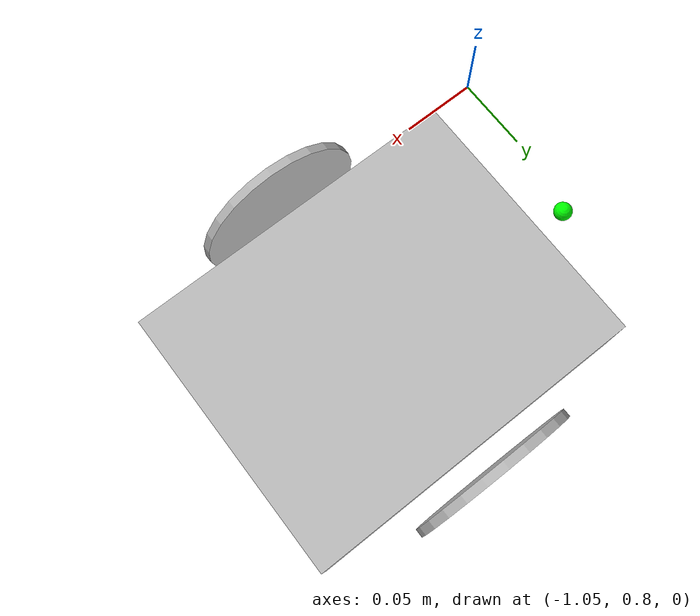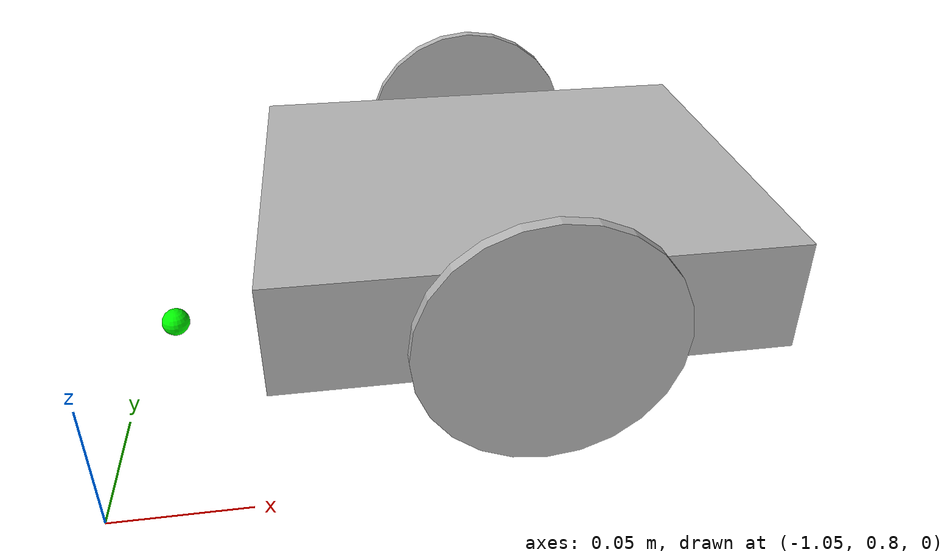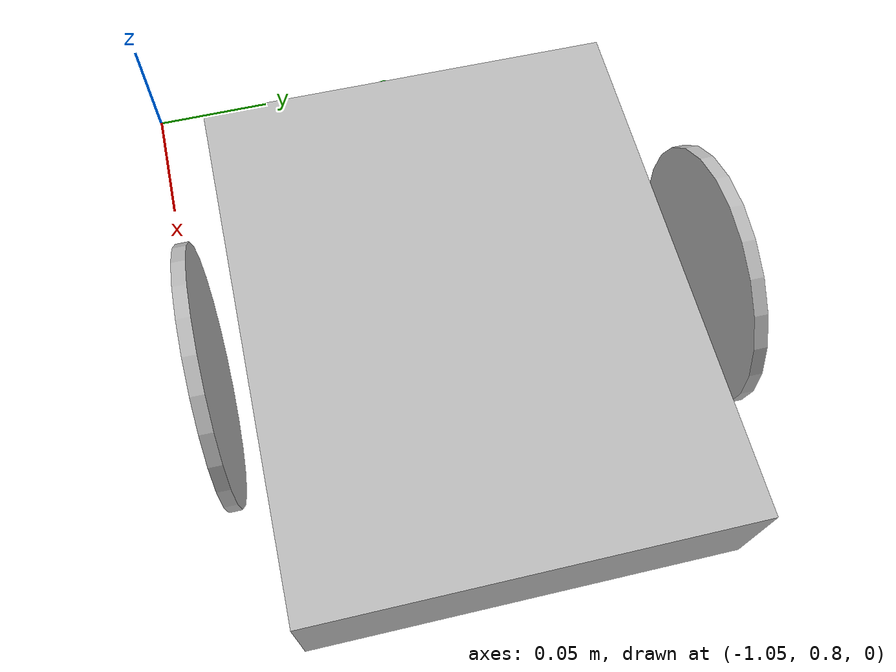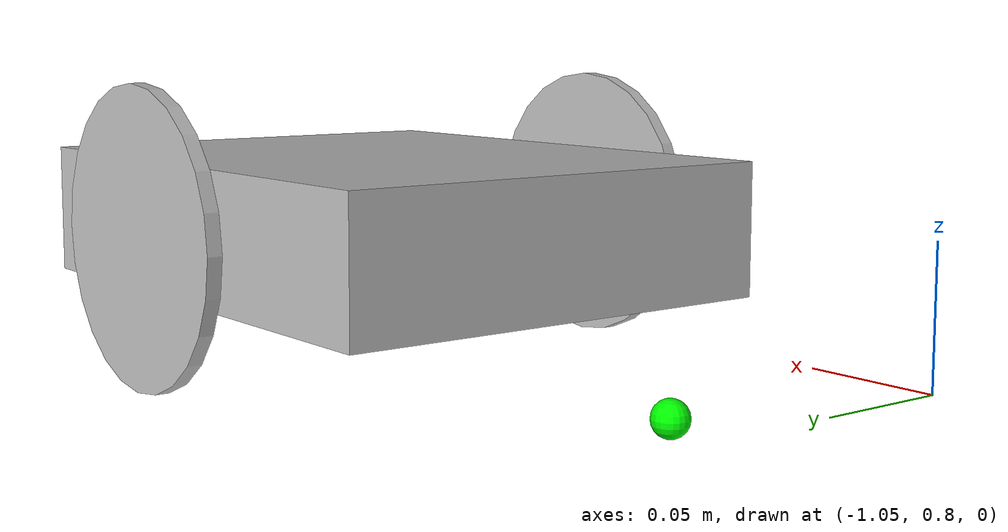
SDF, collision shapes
<?xml version='1.0'?>
<sdf version='1.4'>
  <model name='puzzlebot1' canonical_link='chassis'>
      <pose>-0.894 0.906 0 0 0 0</pose>
      <link name='chassis'>
        <pose>0 0 0.050000000000000003 0 0 0</pose>
        <inertial>
          <mass>0.80000000000000004</mass>
          <pose>0 0 0 0 0 0</pose>
          <inertia>
            <ixx>0.070000000000000007</ixx>
            <iyy>0.080000000000000002</iyy>
            <izz>0.10000000000000001</izz>
            <ixy>0</ixy>
            <ixz>0</ixz>
            <iyz>0</iyz>
          </inertia>
        </inertial>
        <visual name='visual'>
          <geometry>
            <mesh>
              <uri>file:///root/octavo_ws/src/TE3003B/puzzlebot_sim/models/puzzlebot_lidar/meshes/chassis1.dae</uri>
            </mesh>
          </geometry>
        </visual>
        <collision name='collision'>
          <pose>0 0 0 0 0 0</pose>
          <geometry>
            <box>
              <size>0.20000000000000001 0.16 0.045999999999999999</size>
            </box>
          </geometry>
          <surface>
            <friction>
              <ode/>
            </friction>
            <bounce/>
            <contact/>
          </surface>
        </collision>
        <sensor name='gpu_lidar' type='gpu_lidar'>
          <pose>0 0 0.059999999999999998 0 0 0</pose>
          <topic>lidar</topic>
          <update_rate>10</update_rate>
          <enable_metrics>false</enable_metrics>
          <lidar>
            <scan>
              <horizontal>
                <samples>360</samples>
                <resolution>1</resolution>
                <min_angle>-3.1400000000000001</min_angle>
                <max_angle>3.1400000000000001</max_angle>
              </horizontal>
              <vertical>
                <samples>1</samples>
                <min_angle>0</min_angle>
                <max_angle>0</max_angle>
                <resolution>1</resolution>
              </vertical>
            </scan>
            <range>
              <min>0.20000000000000001</min>
              <max>6</max>
              <resolution>0.050000000000000003</resolution>
            </range>
            <noise>
              <type>gaussian</type>
              <mean>0</mean>
              <stddev>0.01</stddev>
            </noise>
            <visibility_mask>4294967295</visibility_mask>
          </lidar>
        </sensor>
        <enable_wind>false</enable_wind>
      </link>
      <link name='right_wheel'>
        <pose>-8.8818099135385017e-16 -0.095000000000000057 0.05000000000000001 4.9068372439163181e-17 -5.2958952582718021e-13 3.1415000000000002</pose>
        <inertial>
          <mass>0.050000000000000003</mass>
          <inertia>
            <ixx>5.1e-05</ixx>
            <iyy>5.1e-05</iyy>
            <izz>9.0000000000000006e-05</izz>
            <ixy>0</ixy>
            <ixz>0</ixz>
            <iyz>0</iyz>
          </inertia>
          <pose>0 0 0 0 0 0</pose>
        </inertial>
        <visual name='visual'>
          <geometry>
            <mesh>
              <uri>file:///root/octavo_ws/src/TE3003B/puzzlebot_sim/models/puzzlebot_lidar/meshes/wheel.dae</uri>
            </mesh>
          </geometry>
        </visual>
        <collision name='collision'>
          <pose>0 0 0 1.5707 0 0</pose>
          <geometry>
            <cylinder>
              <radius>0.050000000000000003</radius>
              <length>0.0050000000000000001</length>
            </cylinder>
          </geometry>
          <surface>
            <friction>
              <ode>
                <mu>1</mu>
                <mu2>20000.20000000000000001</mu2>
              </ode>
            </friction>
            <bounce/>
            <contact/>
          </surface>
        </collision>
        <enable_wind>false</enable_wind>
      </link>
      <link name='left_wheel'>
        <pose>-8.8817841970012523e-16 0.094999999999999973 0.05000000000000001 -1.0096114592985847e-28 2.1802287131564425e-15 2.2449120913163134e-33</pose>
        <inertial>
          <mass>0.050000000000000003</mass>
          <inertia>
            <ixx>5.1e-05</ixx>
            <iyy>5.1e-05</iyy>
            <izz>9.0000000000000006e-05</izz>
            <ixy>0</ixy>
            <ixz>0</ixz>
            <iyz>0</iyz>
          </inertia>
          <pose>0 0 0 0 0 0</pose>
        </inertial>
        <visual name='visual'>
          <geometry>
            <mesh>
              <uri>file:///root/octavo_ws/src/TE3003B/puzzlebot_sim/models/puzzlebot_lidar/meshes/wheel.dae</uri>
            </mesh>
          </geometry>
        </visual>
        <collision name='collision'>
          <pose>0 0 0 1.5707 0 0</pose>
          <geometry>
            <cylinder>
              <radius>0.050000000000000003</radius>
              <length>0.0050000000000000001</length>
            </cylinder>
          </geometry>
          <surface>
            <friction>
              <ode>
                <mu>1</mu>
                <mu2>20000.20000000000000001</mu2>
              </ode>
            </friction>
            <bounce/>
            <contact/>
          </surface>
        </collision>
        <enable_wind>false</enable_wind>
      </link>
      <frame name='caster_frame' attached_to='chassis'>
        <pose>-0.14499999999999999 0 -0.043999999999999997 0 0 0</pose>
      </frame>
      <link name='caster'>
        <pose>-0.14500000000000046 -5.5511151231254813e-17 0.0060000000000000123 3.4723978635961383e-12 1.721069681954544e-07 -1.3524914280157572e-13</pose>
        <inertial>
          <mass>0.01</mass>
          <inertia>
            <ixx>5.1e-05</ixx>
            <iyy>5.1e-05</iyy>
            <izz>9.0000000000000006e-05</izz>
            <ixy>0</ixy>
            <ixz>0</ixz>
            <iyz>0</iyz>
          </inertia>
          <pose>0 0 0 0 0 0</pose>
        </inertial>
        <visual name='visual'>
          <geometry>
            <sphere>
              <radius>0.0060000000000000001</radius>
            </sphere>
          </geometry>
          <material>
            <ambient>0 1 0 1</ambient>
            <diffuse>0 1 0 1</diffuse>
            <specular>0 1 0 1</specular>
          </material>
        </visual>
        <collision name='collision'>
          <geometry>
            <sphere>
              <radius>0.0060000000000000001</radius>
            </sphere>
          </geometry>
          <surface>
            <friction>
              <ode/>
            </friction>
            <bounce/>
            <contact/>
          </surface>
        </collision>
        <enable_wind>false</enable_wind>
      </link>
      <joint name='left_wheel_joint' type='revolute'>
        <pose>1.9721522630525295e-31 0 0 0 0 0</pose>
        <parent>chassis</parent>
        <child>left_wheel</child>
        <axis>
          <xyz>0 1 0</xyz>
          <limit>
            <lower>-1.7976900000000001e+308</lower>
            <upper>1.7976900000000001e+308</upper>
            <effort>1</effort>
            <velocity>inf</velocity>
            <stiffness>100000000</stiffness>
            <dissipation>1</dissipation>
          </limit>
          <dynamics>
            <spring_reference>0</spring_reference>
            <spring_stiffness>0</spring_stiffness>
            <damping>0</damping>
            <friction>0.10000000000000001</friction>
          </dynamics>
        </axis>
      </joint>
      <joint name='right_wheel_joint' type='revolute'>
        <pose>0 -2.7755575615628914e-17 2.0816681711721685e-17 0 0 0</pose>
        <parent>chassis</parent>
        <child>right_wheel</child>
        <axis>
          <xyz>9.2653589660490244e-05 -0.99999999570765619 0</xyz>
          <limit>
            <lower>-1.7976900000000001e+308</lower>
            <upper>1.7976900000000001e+308</upper>
            <effort>1</effort>
            <velocity>inf</velocity>
            <stiffness>100000000</stiffness>
            <dissipation>1</dissipation>
          </limit>
          <dynamics>
            <spring_reference>0</spring_reference>
            <spring_stiffness>0</spring_stiffness>
            <damping>0</damping>
            <friction>0.10000000000000001</friction>
          </dynamics>
        </axis>
      </joint>
      <joint name='caster_wheel' type='ball'>
        <parent>chassis</parent>
        <child>caster</child>
        <pose>0 -2.3665827156630354e-30 8.6736173798840355e-19 0 2.3481993684272065e-25 0</pose>
      </joint>
      <plugin name='gz::sim::systems::DiffDrive' filename='libgz-sim8-diff-drive-system.so'>
        <left_joint>left_wheel_joint</left_joint>
        <right_joint>right_wheel_joint</right_joint>
        <wheel_separation>0.19</wheel_separation>
        <wheel_radius>0.05</wheel_radius>
        <topic>cmd_vel</topic>
	<odom_topic>/odom</odom_topic>
      </plugin>
      <frame name='lidar_frame' attached_to='chassis'>
        <pose>0 0 0.059999999999999998 0 0 0</pose>
      </frame>
      <plugin name='gz::sim::systems::Sensors' filename='gz-sim-sensors-system'>
        <render_engine>ogre2</render_engine>
      </plugin>
      <pose>0 0 0 0 0 0</pose>
      <static>false</static>
      <self_collide>false</self_collide>
    </model>
</sdf>
